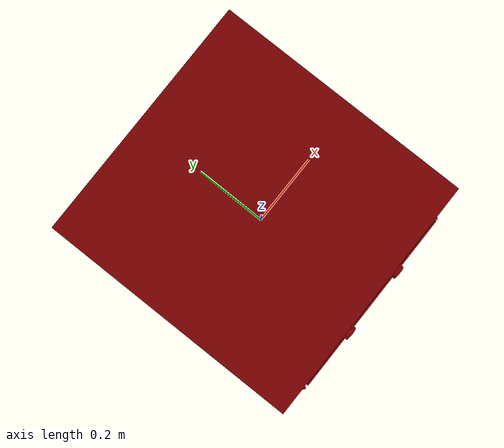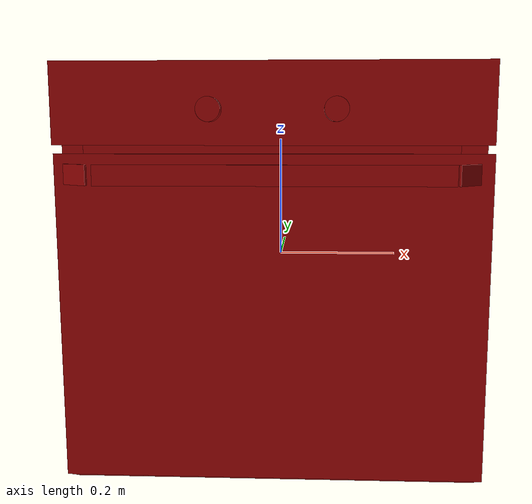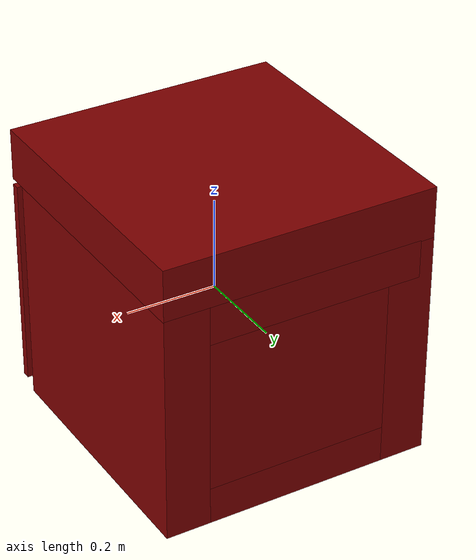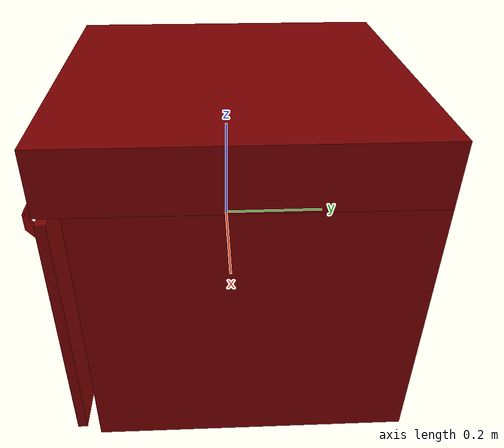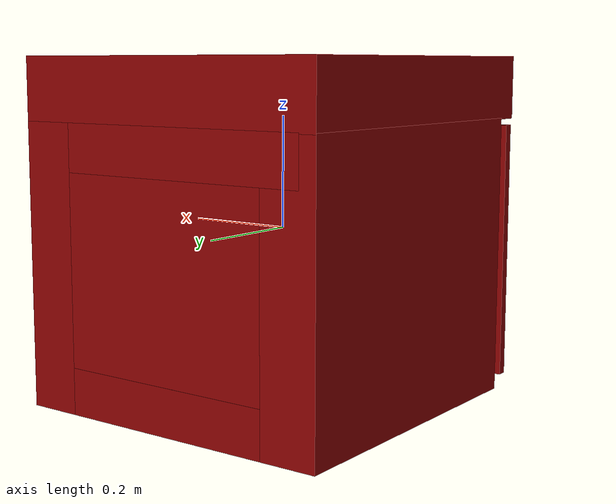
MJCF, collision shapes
<mujoco model="model">
  <compiler angle="radian"/>
  <asset>
    <mesh file="visuals/Body001.obj" name="Body001_vis"/>
    <mesh file="visuals/Container001.obj" name="Container001_vis"/>
    <mesh file="visuals/Door001.obj" name="Door001_vis"/>
    <mesh file="visuals/Door001_Clear.obj" name="Door001_Clear_vis"/>
    <mesh file="visuals/Knob001.obj" name="Knob001_vis"/>
    <mesh file="visuals/Knob002.obj" name="Knob002_vis"/>
    <mesh file="visuals/Shelf001.obj" name="Shelf001_vis"/>
    <texture file="visuals/T_BC001.png" name="Body001_material" type="2d"/>
    <material name="Body001_material" rgba="1 1 1 1.0" texture="Body001_material" shininess="0.141421377658844" specular="0.3103448502657381"/>
    <texture file="visuals/T_BC001.png" name="Container001_material" type="2d"/>
    <material name="Container001_material" rgba="1 1 1 1.0" texture="Container001_material" shininess="0.141421377658844" specular="0.3103448502657381"/>
    <texture file="visuals/T_BC001.png" name="Door001_material" type="2d"/>
    <material name="Door001_material" rgba="1 1 1 1.0" texture="Door001_material" shininess="0.141421377658844" specular="0.3103448502657381"/>
    <texture file="visuals/T_BC001.png" name="Door001_Clear_material" type="2d"/>
    <material name="Door001_Clear_material" rgba="1 1 1 0.6836158037185669" texture="Door001_Clear_material" shininess="0.141421377658844" specular="0.3103448502657381"/>
    <texture file="visuals/T_BC001.png" name="Knob001_material" type="2d"/>
    <material name="Knob001_material" rgba="1 1 1 1.0" texture="Knob001_material" shininess="0.141421377658844" specular="0.3103448502657381"/>
    <texture file="visuals/T_BC001.png" name="Knob002_material" type="2d"/>
    <material name="Knob002_material" rgba="1 1 1 1.0" texture="Knob002_material" shininess="0.141421377658844" specular="0.3103448502657381"/>
    <texture file="visuals/T_BC001.png" name="Shelf001_material" type="2d"/>
    <material name="Shelf001_material" rgba="1 1 1 1.0" texture="Shelf001_material" shininess="0.141421377658844" specular="0.3103448502657381"/>
  </asset>
  <default>
    <default class="visual">
      <geom conaffinity="0" contype="0" group="1" type="mesh"/>
    </default>
    <default class="collision">
      <geom group="0" rgba="0.5 0 0 0.5"/>
    </default>
    <default class="spawn">
      <geom group="0" rgba="1 1 1 0.5" contype="0" conaffinity="0"/>
      <site group="0" rgba="1 1 1 0.5"/>
    </default>
    <default class="region">
      <geom group="1" conaffinity="0" contype="0" rgba="0 1 0 0"/>
    </default>
  </default>
  <worldbody>
    <body>
      <body name="object">
        <geom mesh="Body001_vis" type="mesh" solimp="0.998 0.998 0.001" solref="0.001 1" density="100" friction="0.95 0.3 0.1" class="visual" material="Body001_material"/>
        <geom class="collision" type="box" pos="-0.000476 0.015482 0.249212" size="0.29999977350234985 0.31144022941589355 0.056017499417066574" quat="1.0 0.0 0.0 0.0"/>
        <geom class="collision" type="box" pos="-0.186051 -0.069891 0.086417" size="0.015698205679655075 0.17097292840480804 0.0020027034915983677" quat="1.0 0.0 0.0 0.0"/>
        <geom class="collision" type="box" pos="0.250769 0.036704 -0.054944" size="0.048754557967185974 0.29022109508514404 0.2502887547016144" quat="1.0 0.0 0.0 0.0"/>
        <geom class="collision" type="box" pos="-0.003975 0.036688 0.153786" size="0.26645320653915405 0.29023653268814087 0.04155314713716507" quat="1.0 0.0 0.0 0.0"/>
        <geom class="collision" type="box" pos="-0.003975 0.036712 -0.263911" size="0.2664526402950287 0.290208637714386 0.041318804025650024" quat="1.0 0.0 0.0 0.0"/>
        <geom class="collision" type="box" pos="-0.003975 0.231101 -0.019616" size="0.2664520740509033 0.09581811726093292 0.20817549526691437" quat="1.0 0.0 0.0 0.0"/>
        <geom class="collision" type="box" pos="-0.186051 -0.069891 0.065375" size="0.01569814793765545 0.1709720343351364 0.0020026962738484144" quat="1.0 0.0 0.0 0.0"/>
        <geom class="collision" type="box" pos="-0.186051 -0.069891 0.022808" size="0.01569814234972 0.17097194492816925 0.0020026955753564835" quat="1.0 0.0 0.0 0.0"/>
        <geom class="collision" type="box" pos="-0.186051 -0.069891 0.002733" size="0.015698136761784554 0.1709718555212021 0.0020026948768645525" quat="1.0 0.0 0.0 0.0"/>
        <geom class="collision" type="box" pos="-0.186051 -0.069891 -0.196196" size="0.015698131173849106 0.17097176611423492 0.0020026941783726215" quat="1.0 0.0 0.0 0.0"/>
        <geom class="collision" type="box" pos="-0.186051 -0.069891 -0.176001" size="0.015698125585913658 0.17097167670726776 0.0020026934798806906" quat="1.0 0.0 0.0 0.0"/>
        <geom class="collision" type="box" pos="-0.186051 -0.069891 -0.133555" size="0.01569811999797821 0.1709715873003006 0.0020026927813887596" quat="1.0 0.0 0.0 0.0"/>
        <geom class="collision" type="box" pos="-0.186051 -0.069891 -0.113238" size="0.015698114410042763 0.17097149789333344 0.0020026920828968287" quat="1.0 0.0 0.0 0.0"/>
        <geom class="collision" type="box" pos="-0.186051 -0.069891 -0.065834" size="0.015698108822107315 0.17097140848636627 0.0020026913844048977" quat="1.0 0.0 0.0 0.0"/>
        <geom class="collision" type="box" pos="-0.186051 -0.069891 -0.045639" size="0.015698103234171867 0.1709713190793991 0.0020026906859129667" quat="1.0 0.0 0.0 0.0"/>
        <geom class="collision" type="box" pos="-0.249598 0.036688 -0.054943" size="0.05087992921471596 0.29023388028144836 0.25028741359710693" quat="1.0 0.0 0.0 0.0"/>
        <geom class="collision" type="box" pos="0.192053 -0.069891 0.065375" size="0.015698092058300972 0.17097114026546478 0.002002689288929105" quat="1.0 0.0 0.0 0.0"/>
        <geom class="collision" type="box" pos="0.192053 -0.069891 -0.045639" size="0.015698086470365524 0.17097103595733643 0.002002688590437174" quat="1.0 0.0 0.0 0.0"/>
        <geom class="collision" type="box" pos="0.192053 -0.069891 -0.065834" size="0.015698080882430077 0.17097094655036926 0.002002687891945243" quat="1.0 0.0 0.0 0.0"/>
        <geom class="collision" type="box" pos="0.192053 -0.069891 -0.113238" size="0.01569807529449463 0.1709708571434021 0.002002687193453312" quat="1.0 0.0 0.0 0.0"/>
        <geom class="collision" type="box" pos="0.192053 -0.069891 -0.133555" size="0.01569806970655918 0.17097076773643494 0.002002686494961381" quat="1.0 0.0 0.0 0.0"/>
        <geom class="collision" type="box" pos="0.192053 -0.069891 -0.176001" size="0.015698064118623734 0.17097067832946777 0.00200268579646945" quat="1.0 0.0 0.0 0.0"/>
        <geom class="collision" type="box" pos="0.192053 -0.069891 -0.196196" size="0.015698058530688286 0.1709705889225006 0.002002685097977519" quat="1.0 0.0 0.0 0.0"/>
        <geom class="collision" type="box" pos="0.192053 -0.069891 0.002733" size="0.015698052942752838 0.17097049951553345 0.002002684399485588" quat="1.0 0.0 0.0 0.0"/>
        <geom class="collision" type="box" pos="0.192053 -0.069891 0.022808" size="0.01569804735481739 0.17097041010856628 0.002002683700993657" quat="1.0 0.0 0.0 0.0"/>
        <geom class="collision" type="box" pos="0.192053 -0.069891 0.086417" size="0.015698041766881943 0.17097032070159912 0.002002683002501726" quat="1.0 0.0 0.0 0.0"/>
        <body name="rack1">
          <joint axis="0.0 -1.0 0.0" pos="0.000653 -0.066930 0.023950" limited="true" name="rack1_joint" range="0.0 0.25" type="slide" damping="1" frictionloss="1" armature=".01" stiffness="0.05"/>
          <geom mesh="Container001_vis" type="mesh" solimp="0.998 0.998 0.001" solref="0.001 1" density="100" friction="0.95 0.3 0.1" class="visual" material="Container001_material"/>
          <geom class="collision" type="box" pos="0.003097 -0.075485 0.023914" size="0.17295271158218384 0.135758638381958 0.005540007259696722" quat="1.0 0.0 0.0 0.0"/>
          <geom class="region" name="reg_rack1" type="box" pos="0.0 -0.075 0.065" size="0.135 0.095 0.035"/>
        </body>
        <body name="door">
          <joint axis="1.0 0.0 0.0" pos="0.000538 -0.293356 -0.288232" limited="true" name="door_joint" range="0.0 1.15" type="hinge" damping="5" frictionloss="1" armature=".01" stiffness="0.05"/>
          <geom mesh="Door001_vis" type="mesh" solimp="0.998 0.998 0.001" solref="0.001 1" density="100" friction="0.95 0.3 0.1" class="visual" material="Door001_material"/>
          <geom class="collision" type="box" pos="0.000538 -0.285405 -0.051063" size="0.2999388873577118 0.008805791847407818 0.23269832134246826" quat="1.0 0.0 0.0 0.0" name="door_main"/>
          <geom class="collision" type="box" pos="0.003668 -0.324912 0.154171" size="0.24166740477085114 0.0017287449445575476 0.014042295515537262" quat="1.0 0.0 0.0 0.0" name="door_handle_main"/>
          <geom class="collision" type="box" pos="0.265332 -0.308491 0.154171" size="0.02361122891306877 0.0017287449445575476 0.014042295515537262" quat="0.9275559186935425 0.0 0.0 0.3736843764781952"/>
          <geom class="collision" type="box" pos="-0.265049 -0.311442 0.154171" size="0.02361122891306877 0.0017287449445575476 0.014042295515537262" quat="0.9500517845153809 0.0 -0.0 -0.31209230422973633"/>
          <body name="Door001_Clear">
            <geom mesh="Door001_Clear_vis" type="mesh" solimp="0.998 0.998 0.001" solref="0.001 1" density="100" friction="0.95 0.3 0.1" class="visual" material="Door001_Clear_material"/>
            <geom class="collision" type="box" pos="0.000495 -0.288650 -0.031117" size="0.20893527567386627 0.002611293224617839 0.14597749710083008" quat="1.0 0.0 0.0 0.0"/>
          </body>
        </body>
        <body name="knob_time">
          <joint axis="0.0 1.0 0.0" pos="-0.083075 -0.305981 0.241092" limited="true" name="knob_time_joint" range="0.0 5.235987755982989" type="hinge" damping="0.05" armature="0.001"/>
          <geom mesh="Knob001_vis" type="mesh" solimp="0.998 0.998 0.001" solref="0.001 1" density="100" friction="0.95 0.3 0.1" class="visual" material="Knob001_material"/>
          <geom class="collision" type="cylinder" pos="-0.082954 -0.308114 0.240881" size="0.0165864247828722 0.008633961901068687" quat="0.7071067094802856 0.7071068286895752 0.0 0.0" name="knob_time_main"/>
        </body>
        <body name="knob_temp">
          <joint axis="0.0 1.0 0.0" pos="0.087160 -0.305981 0.241092" limited="true" name="knob_temp_joint" range="0.0 4.886921905584122" type="hinge" damping="0.05" armature="0.001"/>
          <geom mesh="Knob002_vis" type="mesh" solimp="0.998 0.998 0.001" solref="0.001 1" density="100" friction="0.95 0.3 0.1" class="visual" material="Knob002_material"/>
          <geom class="collision" type="cylinder" pos="0.087232 -0.308114 0.240881" size="0.0165864247828722 0.008633961901068687" quat="0.7071067094802856 0.7071068286895752 0.0 0.0" name="knob_temp_main"/>
        </body>
        <body name="rack0">
          <joint axis="0.0 -1.0 0.0" pos="0.002179 -0.070384 -0.134269" limited="true" name="rack0_joint" range="0.0 0.25" type="slide" damping="1" frictionloss="1" armature=".01" stiffness="0.05"/>
          <geom mesh="Shelf001_vis" type="mesh" solimp="0.998 0.998 0.001" solref="0.001 1" density="100" friction="0.95 0.3 0.1" class="visual" material="Shelf001_material"/>
          <geom class="collision" type="box" pos="0.003282 -0.075485 -0.131993" size="0.17288152873516083 0.135758638381958 0.00428949436172843" quat="1.0 0.0 0.0 0.0"/>
          <geom class="region" name="reg_rack0" type="box" pos="0.0 -0.075 -0.06" size="0.14 0.12 0.07"/>
        </body>
        <geom class="region" name="reg_main" type="box" pos="0.0 0.01547949999999998 0.00046700000000002295" size="0.301 0.3114345 0.30569599999999997"/>
      </body>
    </body>
  </worldbody>
  <actuator>
    <motor name="rack1_joint_actuator" joint="rack1_joint" gear="10"/>
    <motor name="door_joint_actuator" joint="door_joint" gear="50"/>
    <motor name="knob_time_joint_actuator" joint="knob_time_joint" gear="50"/>
    <motor name="knob_temp_joint_actuator" joint="knob_temp_joint" gear="50"/>
    <motor name="rack0_joint_actuator" joint="rack0_joint" gear="50"/>
  </actuator>
</mujoco>
